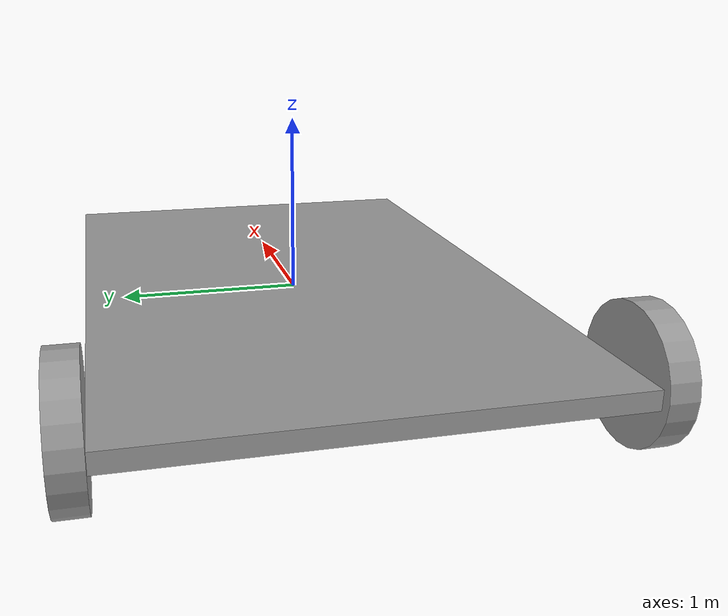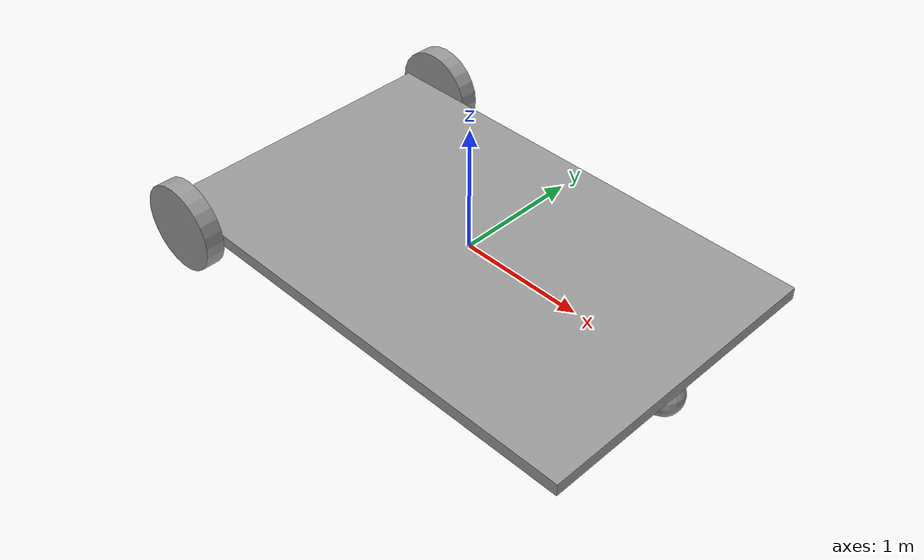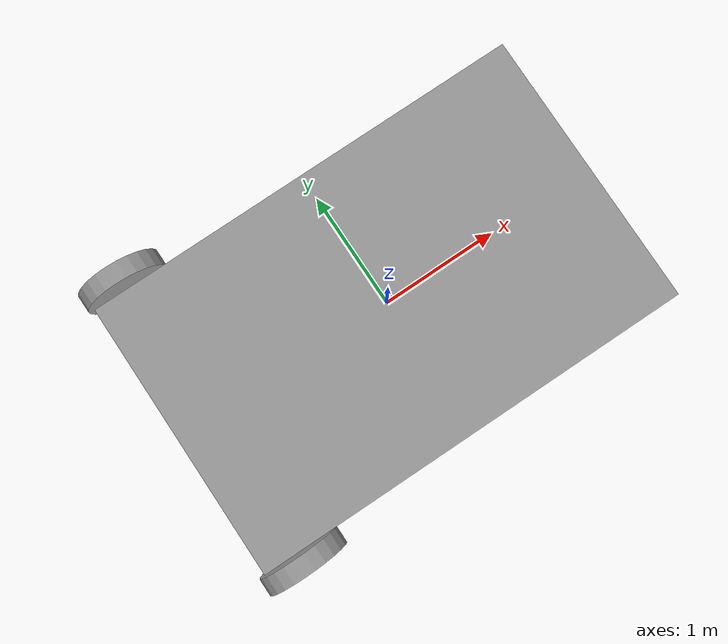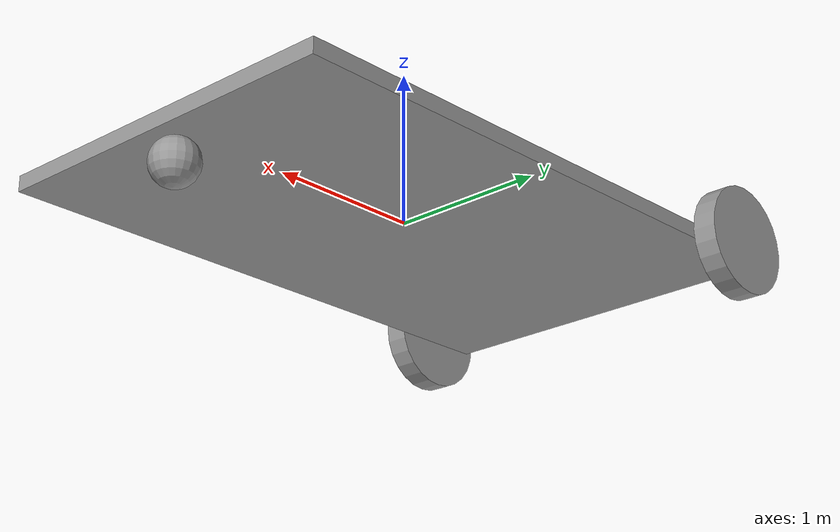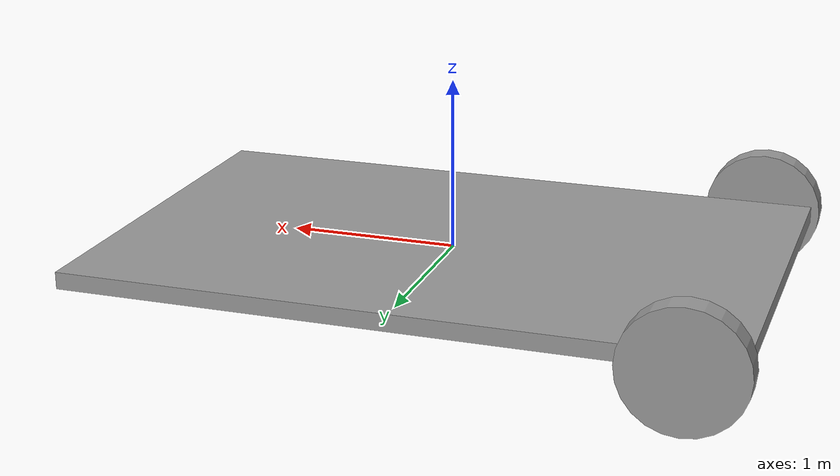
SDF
<?xml version='1.0'?>
<sdf version='1.7'>
  <model name='car'>
    <link name='car'>
      <inertial>
        <mass>3.02223</mass>
        <inertia>
          <ixx>1.51382</ixx>
          <ixy>0</ixy>
          <ixz>0</ixz>
          <iyy>3.77707</iyy>
          <iyz>0</iyz>
          <izz>5.23861</izz>
        </inertia>
        <pose>0 0 0 0 -0 0</pose>
      </inertial>
      <pose>1e-06 2e-06 -0 0 -0 0</pose>
      <self_collide>0</self_collide>
      <enable_wind>0</enable_wind>
      <kinematic>0</kinematic>
      <gravity>1</gravity>
      <visual name='visual'>
        <pose>0 0 0 0 -0 0</pose>
        <geometry>
          <box>
            <size>3.85919 2.43042 0.1</size>
          </box>
        </geometry>
        <material>
          <lighting>1</lighting>
          <script>
            <uri>file://media/materials/scripts/gazebo.material</uri>
            <name>Gazebo/Grey</name>
          </script>
          <shader type='pixel'>
            <normal_map>__default__</normal_map>
          </shader>
          <emissive>0 0 0 1</emissive>
          <ambient>0.3 0.3 0.3 1</ambient>
          <diffuse>0.7 0.7 0.7 1</diffuse>
          <specular>0.01 0.01 0.01 1</specular>
        </material>
        <transparency>0</transparency>
        <cast_shadows>1</cast_shadows>
      </visual>
      <collision name='collision'>
        <laser_retro>0</laser_retro>
        <max_contacts>10</max_contacts>
        <pose>0 0 0 0 -0 0</pose>
        <geometry>
          <box>
            <size>3.85919 2.43042 0.1</size>
          </box>
        </geometry>
        <surface>
          <friction>
            <ode>
              <mu>1</mu>
              <mu2>1</mu2>
              <fdir1>0 0 0</fdir1>
              <slip1>0</slip1>
              <slip2>0</slip2>
            </ode>
            <torsional>
              <coefficient>1</coefficient>
              <patch_radius>0</patch_radius>
              <surface_radius>0</surface_radius>
              <use_patch_radius>1</use_patch_radius>
              <ode>
                <slip>0</slip>
              </ode>
            </torsional>
          </friction>
          <bounce>
            <restitution_coefficient>0</restitution_coefficient>
            <threshold>1e+06</threshold>
          </bounce>
          <contact>
            <collide_without_contact>0</collide_without_contact>
            <collide_without_contact_bitmask>1</collide_without_contact_bitmask>
            <collide_bitmask>1</collide_bitmask>
            <ode>
              <soft_cfm>0</soft_cfm>
              <soft_erp>0.2</soft_erp>
              <kp>1e+13</kp>
              <kd>1</kd>
              <max_vel>0.01</max_vel>
              <min_depth>0</min_depth>
            </ode>
            <bullet>
              <split_impulse>1</split_impulse>
              <split_impulse_penetration_threshold>-0.01</split_impulse_penetration_threshold>
              <soft_cfm>0</soft_cfm>
              <soft_erp>0.2</soft_erp>
              <kp>1e+13</kp>
              <kd>1</kd>
            </bullet>
          </contact>
        </surface>
      </collision>
    </link>
    <link name='LeftWheelMotor'>
      <inertial>
        <mass>0.10092</mass>
        <inertia>
          <ixx>0.00365905</ixx>
          <ixy>0</ixy>
          <ixz>0</ixz>
          <iyy>0.00365905</iyy>
          <iyz>0</iyz>
          <izz>0.00671321</izz>
        </inertia>
        <pose>0 0 0 0 -0 0</pose>
      </inertial>
      <pose>-1.62959 -1.29024 -0 1.5707 -0 0</pose>
      <gravity>1</gravity>
      <self_collide>0</self_collide>
      <kinematic>0</kinematic>
      <enable_wind>0</enable_wind>
      <visual name='visual'>
        <pose>0 0 0 0 -0 0</pose>
        <geometry>
          <cylinder>
            <radius>0.35</radius>
            <length>0.15</length>
          </cylinder>
        </geometry>
        <material>
          <lighting>1</lighting>
          <script>
            <uri>file://media/materials/scripts/gazebo.material</uri>
            <name>Gazebo/Grey</name>
          </script>
          <shader type='pixel'>
            <normal_map>__default__</normal_map>
          </shader>
          <ambient>0.3 0.3 0.3 1</ambient>
          <diffuse>0.7 0.7 0.7 1</diffuse>
          <specular>0.01 0.01 0.01 1</specular>
          <emissive>0 0 0 1</emissive>
        </material>
        <transparency>0</transparency>
        <cast_shadows>1</cast_shadows>
      </visual>
      <collision name='collision'>
        <laser_retro>0</laser_retro>
        <max_contacts>10</max_contacts>
        <pose>0 0 0 0 -0 0</pose>
        <geometry>
          <cylinder>
            <radius>0.35</radius>
            <length>0.15</length>
          </cylinder>
        </geometry>
        <surface>
          <friction>
            <ode>
              <mu>1</mu>
              <mu2>1</mu2>
              <fdir1>0 0 0</fdir1>
              <slip1>0</slip1>
              <slip2>0</slip2>
            </ode>
            <torsional>
              <coefficient>1</coefficient>
              <patch_radius>0</patch_radius>
              <surface_radius>0</surface_radius>
              <use_patch_radius>1</use_patch_radius>
              <ode>
                <slip>0</slip>
              </ode>
            </torsional>
          </friction>
          <bounce>
            <restitution_coefficient>0</restitution_coefficient>
            <threshold>1e+06</threshold>
          </bounce>
          <contact>
            <collide_without_contact>0</collide_without_contact>
            <collide_without_contact_bitmask>1</collide_without_contact_bitmask>
            <collide_bitmask>1</collide_bitmask>
            <ode>
              <soft_cfm>0</soft_cfm>
              <soft_erp>0.2</soft_erp>
              <kp>1e+13</kp>
              <kd>1</kd>
              <max_vel>0.01</max_vel>
              <min_depth>0</min_depth>
            </ode>
            <bullet>
              <split_impulse>1</split_impulse>
              <split_impulse_penetration_threshold>-0.01</split_impulse_penetration_threshold>
              <soft_cfm>0</soft_cfm>
              <soft_erp>0.2</soft_erp>
              <kp>1e+13</kp>
              <kd>1</kd>
            </bullet>
          </contact>
        </surface>
      </collision>
    </link>
    <link name='RightWheelMotor'>
      <inertial>
        <mass>0.10092</mass>
        <inertia>
          <ixx>0.00365905</ixx>
          <ixy>0</ixy>
          <ixz>0</ixz>
          <iyy>0.00365905</iyy>
          <iyz>0</iyz>
          <izz>0.00671321</izz>
        </inertia>
        <pose>0 0 0 0 -0 0</pose>
      </inertial>
      <pose>-1.62959 1.29024 0 1.5707 -0 0</pose>
      <gravity>1</gravity>
      <self_collide>0</self_collide>
      <kinematic>0</kinematic>
      <enable_wind>0</enable_wind>
      <visual name='visual'>
        <pose>0 0 0 0 -0 0</pose>
        <geometry>
          <cylinder>
            <radius>0.35</radius>
            <length>0.15</length>
          </cylinder>
        </geometry>
        <material>
          <lighting>1</lighting>
          <script>
            <uri>file://media/materials/scripts/gazebo.material</uri>
            <name>Gazebo/Grey</name>
          </script>
          <shader type='pixel'>
            <normal_map>__default__</normal_map>
          </shader>
          <ambient>0.3 0.3 0.3 1</ambient>
          <diffuse>0.7 0.7 0.7 1</diffuse>
          <specular>0.01 0.01 0.01 1</specular>
          <emissive>0 0 0 1</emissive>
        </material>
        <transparency>0</transparency>
        <cast_shadows>1</cast_shadows>
      </visual>
      <collision name='collision'>
        <laser_retro>0</laser_retro>
        <max_contacts>10</max_contacts>
        <pose>0 0 0 0 -0 0</pose>
        <geometry>
          <cylinder>
            <radius>0.35</radius>
            <length>0.15</length>
          </cylinder>
        </geometry>
        <surface>
          <friction>
            <ode>
              <mu>1</mu>
              <mu2>1</mu2>
              <fdir1>0 0 0</fdir1>
              <slip1>0</slip1>
              <slip2>0</slip2>
            </ode>
            <torsional>
              <coefficient>1</coefficient>
              <patch_radius>0</patch_radius>
              <surface_radius>0</surface_radius>
              <use_patch_radius>1</use_patch_radius>
              <ode>
                <slip>0</slip>
              </ode>
            </torsional>
          </friction>
          <bounce>
            <restitution_coefficient>0</restitution_coefficient>
            <threshold>1e+06</threshold>
          </bounce>
          <contact>
            <collide_without_contact>0</collide_without_contact>
            <collide_without_contact_bitmask>1</collide_without_contact_bitmask>
            <collide_bitmask>1</collide_bitmask>
            <ode>
              <soft_cfm>0</soft_cfm>
              <soft_erp>0.2</soft_erp>
              <kp>1e+13</kp>
              <kd>1</kd>
              <max_vel>0.01</max_vel>
              <min_depth>0</min_depth>
            </ode>
            <bullet>
              <split_impulse>1</split_impulse>
              <split_impulse_penetration_threshold>-0.01</split_impulse_penetration_threshold>
              <soft_cfm>0</soft_cfm>
              <soft_erp>0.2</soft_erp>
              <kp>1e+13</kp>
              <kd>1</kd>
            </bullet>
          </contact>
        </surface>
      </collision>
    </link>
    <link name='freeWheel'>
      <inertial>
        <mass>1</mass>
        <inertia>
          <ixx>0.1</ixx>
          <ixy>0</ixy>
          <ixz>0</ixz>
          <iyy>0.1</iyy>
          <iyz>0</iyz>
          <izz>0.1</izz>
        </inertia>
        <pose>0 0 0 0 -0 0</pose>
      </inertial>
      <pose>1.7808 0.001537 -0.200172 7.9e-05 -0.000503 0.000851</pose>
      <gravity>1</gravity>
      <self_collide>0</self_collide>
      <kinematic>0</kinematic>
      <enable_wind>0</enable_wind>
      <visual name='visual'>
        <pose>0 0 0 0 -0 0</pose>
        <geometry>
          <sphere>
            <radius>0.15</radius>
          </sphere>
        </geometry>
        <material>
          <lighting>1</lighting>
          <script>
            <uri>file://media/materials/scripts/gazebo.material</uri>
            <name>Gazebo/Grey</name>
          </script>
          <shader type='pixel'>
            <normal_map>__default__</normal_map>
          </shader>
          <ambient>0.3 0.3 0.3 1</ambient>
          <diffuse>0.7 0.7 0.7 1</diffuse>
          <specular>0.01 0.01 0.01 1</specular>
          <emissive>0 0 0 1</emissive>
        </material>
        <transparency>0</transparency>
        <cast_shadows>1</cast_shadows>
      </visual>
      <collision name='collision'>
        <laser_retro>0</laser_retro>
        <max_contacts>10</max_contacts>
        <pose>0 0 0 0 -0 0</pose>
        <geometry>
          <sphere>
            <radius>0.15</radius>
          </sphere>
        </geometry>
        <surface>
          <friction>
            <ode>
              <mu>1</mu>
              <mu2>1</mu2>
              <fdir1>0 0 0</fdir1>
              <slip1>0</slip1>
              <slip2>0</slip2>
            </ode>
            <torsional>
              <coefficient>1</coefficient>
              <patch_radius>0</patch_radius>
              <surface_radius>0</surface_radius>
              <use_patch_radius>1</use_patch_radius>
              <ode>
                <slip>0</slip>
              </ode>
            </torsional>
          </friction>
          <bounce>
            <restitution_coefficient>0</restitution_coefficient>
            <threshold>1e+06</threshold>
          </bounce>
          <contact>
            <collide_without_contact>0</collide_without_contact>
            <collide_without_contact_bitmask>1</collide_without_contact_bitmask>
            <collide_bitmask>1</collide_bitmask>
            <ode>
              <soft_cfm>0</soft_cfm>
              <soft_erp>0.2</soft_erp>
              <kp>1e+13</kp>
              <kd>1</kd>
              <max_vel>0.01</max_vel>
              <min_depth>0</min_depth>
            </ode>
            <bullet>
              <split_impulse>1</split_impulse>
              <split_impulse_penetration_threshold>-0.01</split_impulse_penetration_threshold>
              <soft_cfm>0</soft_cfm>
              <soft_erp>0.2</soft_erp>
              <kp>1e+13</kp>
              <kd>1</kd>
            </bullet>
          </contact>
        </surface>
      </collision>
    </link>
    <joint name='LeftWheelMotorJoint' type='revolute'>
      <parent>car</parent>
      <child>LeftWheelMotor</child>
      <pose>0 0 0 0 -0 0</pose>
      <axis>
        <xyz>0 0 1</xyz>
        <limit>
          <lower>-1.79769e+308</lower>
          <upper>1.79769e+308</upper>
          <effort>-1</effort>
          <velocity>-1</velocity>
        </limit>
        <dynamics>
          <spring_reference>0</spring_reference>
          <spring_stiffness>0</spring_stiffness>
          <damping>0</damping>
          <friction>0</friction>
        </dynamics>
      </axis>
      <physics>
        <ode>
          <limit>
            <cfm>0</cfm>
            <erp>0.2</erp>
          </limit>
          <suspension>
            <cfm>0</cfm>
            <erp>0.2</erp>
          </suspension>
        </ode>
      </physics>
    </joint>
    <joint name='RightWheelMotorJoint' type='revolute'>
      <parent>car</parent>
      <child>RightWheelMotor</child>
      <pose>0 0 0 0 -0 0</pose>
      <axis>
        <xyz>0 0 1</xyz>
        <limit>
          <lower>-1.79769e+308</lower>
          <upper>1.79769e+308</upper>
          <effort>-1</effort>
          <velocity>-1</velocity>
        </limit>
        <dynamics>
          <spring_reference>0</spring_reference>
          <spring_stiffness>0</spring_stiffness>
          <damping>0</damping>
          <friction>0</friction>
        </dynamics>
      </axis>
      <physics>
        <ode>
          <limit>
            <cfm>0</cfm>
            <erp>0.2</erp>
          </limit>
          <suspension>
            <cfm>0</cfm>
            <erp>0.2</erp>
          </suspension>
        </ode>
      </physics>
    </joint>
    <joint name='freeWheelJoint' type='ball'>
      <parent>car</parent>
      <child>freeWheel</child>
      <pose>0 0 0 0 -0 0</pose>
      <physics>
        <ode>
          <limit>
            <cfm>0</cfm>
            <erp>0.2</erp>
          </limit>
          <suspension>
            <cfm>0</cfm>
            <erp>0.2</erp>
          </suspension>
        </ode>
      </physics>
    </joint>
    <static>0</static>
    <allow_auto_disable>1</allow_auto_disable>
    <plugin name='differential_drive_controller' filename='libgazebo_ros_diff_drive.so'>
      <ros>
        <namespace>/car</namespace>
      </ros>
      <left_joint>LeftWheelMotorJoint</left_joint>
      <right_joint>RightWheelMotorJoint</right_joint>
      <wheel_separation>2.430420</wheel_separation>
      <wheel_diameter>0.35</wheel_diameter>
      <publish_wheel_tf>1</publish_wheel_tf>
      <odometryTopic>odom</odometryTopic>
      <odometryFrame>odom</odometryFrame>
      <robotBaseFrame>base_footprint</robotBaseFrame>
      <publish_odom>1</publish_odom>
      <publish_odom_tf>1</publish_odom_tf>
      <publish_wheel_tf>1</publish_wheel_tf>
    </plugin>
  </model>
</sdf>
